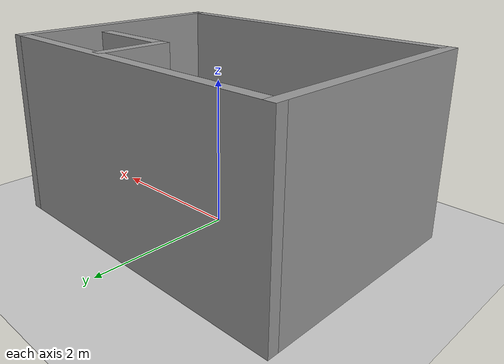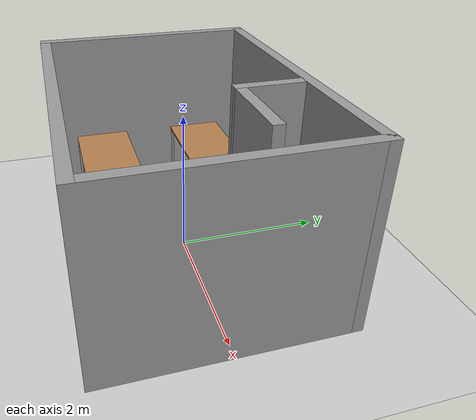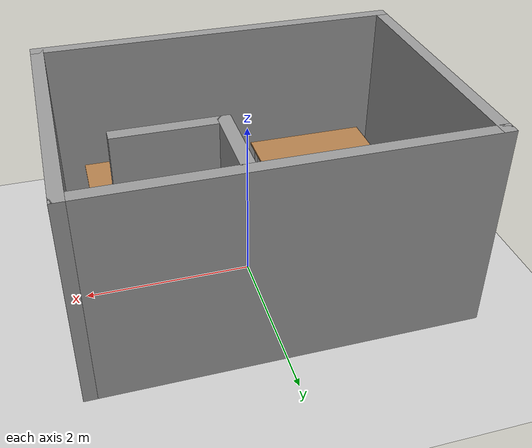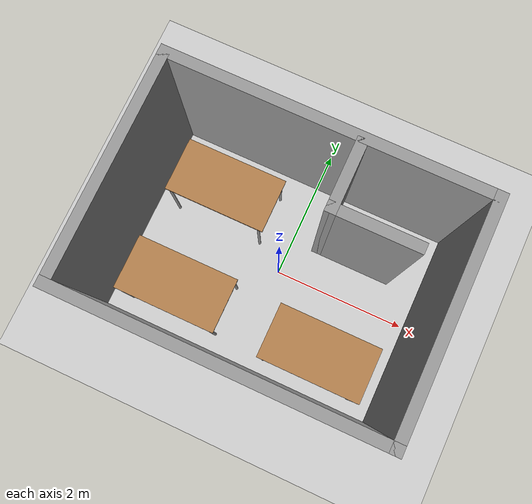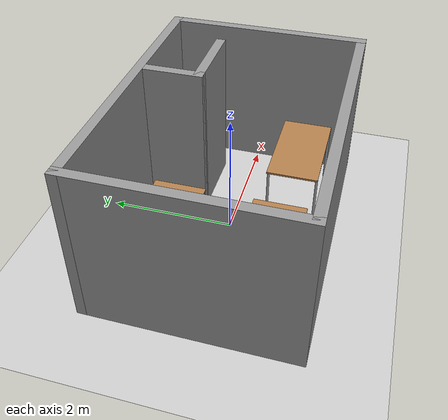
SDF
<sdf version="1.7">
 <world name="default">
  <light name="sun" type="directional">
   <pose>0 0 10 0 -0 0</pose>
   <diffuse>0.8 0.8 0.8 1</diffuse>
   <specular>0.2 0.2 0.2 1</specular>
   <attenuation>
    <range>1000</range>
    <constant>0.9</constant>
    <linear>0.01</linear>
    <quadratic>0.001</quadratic>
   </attenuation>
   <direction>-0.5 0.1 -0.9</direction>
   <spot><inner_angle>0</inner_angle><outer_angle>0</outer_angle><falloff>0</falloff></spot>
  </light>
  <model name="ground_plane">
   <static>1</static>
   <link name="link">
    <collision name="collision">
     <geometry><plane><normal>0 0 1</normal><size>100 100</size></plane></geometry>
     <surface>
      <contact><collide_bitmask>65535</collide_bitmask></contact>
      <friction><ode><mu>100</mu><mu2>50</mu2></ode></friction>
     </surface>
    </collision>
    <visual name="visual">
     <cast_shadows>0</cast_shadows>
     <geometry><plane><normal>0 0 1</normal><size>100 100</size></plane></geometry>
     <material>
      <script><uri>file://media/materials/scripts/gazebo.material</uri><name>Gazebo/Grey</name></script>
     </material>
    </visual>
   </link>
  </model>
  <gravity>0 0 -9.8</gravity>
  <magnetic_field>6e-06 2.3e-05 -4.2e-05</magnetic_field>
  <atmosphere type="adiabatic"/>
  <physics type="ode">
   <max_step_size>0.001</max_step_size>
   <real_time_factor>1</real_time_factor>
   <real_time_update_rate>1000</real_time_update_rate>
  </physics>
  <scene><ambient>0.4 0.4 0.4 1</ambient><background>0.7 0.7 0.7 1</background><shadows>1</shadows></scene>
  <audio><device>default</device></audio>
  <spherical_coordinates>
   <surface_model>EARTH_WGS84</surface_model>
   <latitude_deg>0</latitude_deg>
   <longitude_deg>0</longitude_deg>
   <elevation>0</elevation>
   <heading_deg>0</heading_deg>
  </spherical_coordinates>
  <model name="Untitled">
   <pose>-0.049668 -0.031023 0 0 -0 0</pose>
   <link name="Wall_18">
    <collision name="Wall_18_Collision">
     <geometry><box><size>3.25 0.15 2.5</size></box></geometry>
     <pose>0 0 1.25 0 -0 0</pose>
    </collision>
    <visual name="Wall_18_Visual">
     <pose>0 0 1.25 0 -0 0</pose>
     <geometry><box><size>3.25 0.15 2.5</size></box></geometry>
     <material>
      <script><uri>file://media/materials/scripts/gazebo.material</uri><name>Gazebo/Grey</name></script>
      <ambient>1 1 1 1</ambient>
     </material>
     <meta><layer>0</layer></meta>
    </visual>
    <pose>-2.175 -0 0 0 -0 -1.5708</pose>
   </link>
   <link name="Wall_19">
    <collision name="Wall_19_Collision">
     <geometry><box><size>4.5 0.15 2.5</size></box></geometry>
     <pose>0 0 1.25 0 -0 0</pose>
    </collision>
    <visual name="Wall_19_Visual">
     <pose>0 0 1.25 0 -0 0</pose>
     <geometry><box><size>4.5 0.15 2.5</size></box></geometry>
     <material>
      <script><uri>file://media/materials/scripts/gazebo.material</uri><name>Gazebo/Grey</name></script>
      <ambient>1 1 1 1</ambient>
     </material>
     <meta><layer>0</layer></meta>
    </visual>
    <pose>-0 -1.55 0 0 -0 0</pose>
   </link>
   <link name="Wall_20">
    <collision name="Wall_20_Collision">
     <geometry><box><size>3.25 0.15 2.5</size></box></geometry>
     <pose>0 0 1.25 0 -0 0</pose>
    </collision>
    <visual name="Wall_20_Visual">
     <pose>0 0 1.25 0 -0 0</pose>
     <geometry><box><size>3.25 0.15 2.5</size></box></geometry>
     <material>
      <script><uri>file://media/materials/scripts/gazebo.material</uri><name>Gazebo/Grey</name></script>
      <ambient>1 1 1 1</ambient>
     </material>
     <meta><layer>0</layer></meta>
    </visual>
    <pose>2.175 -0 0 0 -0 1.5708</pose>
   </link>
   <link name="Wall_21">
    <collision name="Wall_21_Collision">
     <geometry><box><size>4.5 0.15 2.5</size></box></geometry>
     <pose>0 0 1.25 0 -0 0</pose>
    </collision>
    <visual name="Wall_21_Visual">
     <pose>0 0 1.25 0 -0 0</pose>
     <geometry><box><size>4.5 0.15 2.5</size></box></geometry>
     <material>
      <script><uri>file://media/materials/scripts/gazebo.material</uri><name>Gazebo/Grey</name></script>
      <ambient>1 1 1 1</ambient>
     </material>
     <meta><layer>0</layer></meta>
    </visual>
    <pose>-0 1.55 0 0 -0 3.14159</pose>
   </link>
   <link name="Wall_23">
    <collision name="Wall_23_Collision">
     <geometry><box><size>1 0.15 2.5</size></box></geometry>
     <pose>0 0 1.25 0 -0 0</pose>
    </collision>
    <visual name="Wall_23_Visual">
     <pose>0 0 1.25 0 -0 0</pose>
     <geometry><box><size>1 0.15 2.5</size></box></geometry>
     <material>
      <script><uri>file://media/materials/scripts/gazebo.material</uri><name>Gazebo/Grey</name></script>
      <ambient>1 1 1 1</ambient>
     </material>
     <meta><layer>0</layer></meta>
    </visual>
    <pose>0.447 1.0445 0 0 -0 -1.5708</pose>
   </link>
   <link name="Wall_24">
    <collision name="Wall_24_Collision">
     <geometry><box><size>1.25 0.15 2.5</size></box></geometry>
     <pose>0 0 1.25 0 -0 0</pose>
    </collision>
    <visual name="Wall_24_Visual">
     <pose>0 0 1.25 0 -0 0</pose>
     <geometry><box><size>1.25 0.15 2.5</size></box></geometry>
     <material>
      <script><uri>file://media/materials/scripts/gazebo.material</uri><name>Gazebo/Grey</name></script>
      <ambient>1 1 1 1</ambient>
     </material>
     <meta><layer>0</layer></meta>
    </visual>
    <pose>0.997 0.6195 0 0 -0 0</pose>
   </link>
   <static>1</static>
  </model>
  <model name="table">
   <static>1</static>
   <link name="link">
    <collision name="surface">
     <pose>0 0 1 0 -0 0</pose>
     <geometry><box><size>1.5 0.8 0.03</size></box></geometry>
     <surface><friction><ode><mu>0.6</mu><mu2>0.6</mu2></ode></friction></surface>
    </collision>
    <visual name="visual1">
     <pose>0 0 1 0 -0 0</pose>
     <geometry><box><size>1.5 0.8 0.03</size></box></geometry>
     <material>
      <script><uri>file://media/materials/scripts/gazebo.material</uri><name>Gazebo/Wood</name></script>
     </material>
    </visual>
    <collision name="front_left_leg">
     <pose>0.68 0.38 0.5 0 -0 0</pose>
     <geometry><cylinder><radius>0.02</radius><length>1</length></cylinder></geometry>
    </collision>
    <visual name="front_left_leg">
     <pose>0.68 0.38 0.5 0 -0 0</pose>
     <geometry><cylinder><radius>0.02</radius><length>1</length></cylinder></geometry>
     <material>
      <script><uri>file://media/materials/scripts/gazebo.material</uri><name>Gazebo/Grey</name></script>
     </material>
    </visual>
    <collision name="front_right_leg">
     <pose>0.68 -0.38 0.5 0 -0 0</pose>
     <geometry><cylinder><radius>0.02</radius><length>1</length></cylinder></geometry>
    </collision>
    <visual name="front_right_leg">
     <pose>0.68 -0.38 0.5 0 -0 0</pose>
     <geometry><cylinder><radius>0.02</radius><length>1</length></cylinder></geometry>
     <material>
      <script><uri>file://media/materials/scripts/gazebo.material</uri><name>Gazebo/Grey</name></script>
     </material>
    </visual>
    <collision name="back_right_leg">
     <pose>-0.68 -0.38 0.5 0 -0 0</pose>
     <geometry><cylinder><radius>0.02</radius><length>1</length></cylinder></geometry>
    </collision>
    <visual name="back_right_leg">
     <pose>-0.68 -0.38 0.5 0 -0 0</pose>
     <geometry><cylinder><radius>0.02</radius><length>1</length></cylinder></geometry>
     <material>
      <script><uri>file://media/materials/scripts/gazebo.material</uri><name>Gazebo/Grey</name></script>
     </material>
    </visual>
    <collision name="back_left_leg">
     <pose>-0.68 0.38 0.5 0 -0 0</pose>
     <geometry><cylinder><radius>0.02</radius><length>1</length></cylinder></geometry>
    </collision>
    <visual name="back_left_leg">
     <pose>-0.68 0.38 0.5 0 -0 0</pose>
     <geometry><cylinder><radius>0.02</radius><length>1</length></cylinder></geometry>
     <material>
      <script><uri>file://media/materials/scripts/gazebo.material</uri><name>Gazebo/Grey</name></script>
     </material>
    </visual>
   </link>
   <pose>-1.12752 0.673091 0 0 -0 0</pose>
  </model>
  <model name="table_0">
   <static>1</static>
   <link name="link">
    <collision name="surface">
     <pose>0 0 1 0 -0 0</pose>
     <geometry><box><size>1.5 0.8 0.03</size></box></geometry>
     <surface><friction><ode><mu>0.6</mu><mu2>0.6</mu2></ode></friction></surface>
    </collision>
    <visual name="visual1">
     <pose>0 0 1 0 -0 0</pose>
     <geometry><box><size>1.5 0.8 0.03</size></box></geometry>
     <material>
      <script><uri>file://media/materials/scripts/gazebo.material</uri><name>Gazebo/Wood</name></script>
     </material>
    </visual>
    <collision name="front_left_leg">
     <pose>0.68 0.38 0.5 0 -0 0</pose>
     <geometry><cylinder><radius>0.02</radius><length>1</length></cylinder></geometry>
    </collision>
    <visual name="front_left_leg">
     <pose>0.68 0.38 0.5 0 -0 0</pose>
     <geometry><cylinder><radius>0.02</radius><length>1</length></cylinder></geometry>
     <material>
      <script><uri>file://media/materials/scripts/gazebo.material</uri><name>Gazebo/Grey</name></script>
     </material>
    </visual>
    <collision name="front_right_leg">
     <pose>0.68 -0.38 0.5 0 -0 0</pose>
     <geometry><cylinder><radius>0.02</radius><length>1</length></cylinder></geometry>
    </collision>
    <visual name="front_right_leg">
     <pose>0.68 -0.38 0.5 0 -0 0</pose>
     <geometry><cylinder><radius>0.02</radius><length>1</length></cylinder></geometry>
     <material>
      <script><uri>file://media/materials/scripts/gazebo.material</uri><name>Gazebo/Grey</name></script>
     </material>
    </visual>
    <collision name="back_right_leg">
     <pose>-0.68 -0.38 0.5 0 -0 0</pose>
     <geometry><cylinder><radius>0.02</radius><length>1</length></cylinder></geometry>
    </collision>
    <visual name="back_right_leg">
     <pose>-0.68 -0.38 0.5 0 -0 0</pose>
     <geometry><cylinder><radius>0.02</radius><length>1</length></cylinder></geometry>
     <material>
      <script><uri>file://media/materials/scripts/gazebo.material</uri><name>Gazebo/Grey</name></script>
     </material>
    </visual>
    <collision name="back_left_leg">
     <pose>-0.68 0.38 0.5 0 -0 0</pose>
     <geometry><cylinder><radius>0.02</radius><length>1</length></cylinder></geometry>
    </collision>
    <visual name="back_left_leg">
     <pose>-0.68 0.38 0.5 0 -0 0</pose>
     <geometry><cylinder><radius>0.02</radius><length>1</length></cylinder></geometry>
     <material>
      <script><uri>file://media/materials/scripts/gazebo.material</uri><name>Gazebo/Grey</name></script>
     </material>
    </visual>
   </link>
   <pose>-1.14748 -0.869848 0 0 -0 0</pose>
  </model>
  <model name="table_1">
   <static>1</static>
   <link name="link">
    <collision name="surface">
     <pose>0 0 1 0 -0 0</pose>
     <geometry><box><size>1.5 0.8 0.03</size></box></geometry>
     <surface><friction><ode><mu>0.6</mu><mu2>0.6</mu2></ode></friction></surface>
    </collision>
    <visual name="visual1">
     <pose>0 0 1 0 -0 0</pose>
     <geometry><box><size>1.5 0.8 0.03</size></box></geometry>
     <material>
      <script><uri>file://media/materials/scripts/gazebo.material</uri><name>Gazebo/Wood</name></script>
     </material>
    </visual>
    <collision name="front_left_leg">
     <pose>0.68 0.38 0.5 0 -0 0</pose>
     <geometry><cylinder><radius>0.02</radius><length>1</length></cylinder></geometry>
    </collision>
    <visual name="front_left_leg">
     <pose>0.68 0.38 0.5 0 -0 0</pose>
     <geometry><cylinder><radius>0.02</radius><length>1</length></cylinder></geometry>
     <material>
      <script><uri>file://media/materials/scripts/gazebo.material</uri><name>Gazebo/Grey</name></script>
     </material>
    </visual>
    <collision name="front_right_leg">
     <pose>0.68 -0.38 0.5 0 -0 0</pose>
     <geometry><cylinder><radius>0.02</radius><length>1</length></cylinder></geometry>
    </collision>
    <visual name="front_right_leg">
     <pose>0.68 -0.38 0.5 0 -0 0</pose>
     <geometry><cylinder><radius>0.02</radius><length>1</length></cylinder></geometry>
     <material>
      <script><uri>file://media/materials/scripts/gazebo.material</uri><name>Gazebo/Grey</name></script>
     </material>
    </visual>
    <collision name="back_right_leg">
     <pose>-0.68 -0.38 0.5 0 -0 0</pose>
     <geometry><cylinder><radius>0.02</radius><length>1</length></cylinder></geometry>
    </collision>
    <visual name="back_right_leg">
     <pose>-0.68 -0.38 0.5 0 -0 0</pose>
     <geometry><cylinder><radius>0.02</radius><length>1</length></cylinder></geometry>
     <material>
      <script><uri>file://media/materials/scripts/gazebo.material</uri><name>Gazebo/Grey</name></script>
     </material>
    </visual>
    <collision name="back_left_leg">
     <pose>-0.68 0.38 0.5 0 -0 0</pose>
     <geometry><cylinder><radius>0.02</radius><length>1</length></cylinder></geometry>
    </collision>
    <visual name="back_left_leg">
     <pose>-0.68 0.38 0.5 0 -0 0</pose>
     <geometry><cylinder><radius>0.02</radius><length>1</length></cylinder></geometry>
     <material>
      <script><uri>file://media/materials/scripts/gazebo.material</uri><name>Gazebo/Grey</name></script>
     </material>
    </visual>
   </link>
   <pose>1.01709 -0.909596 0 0 -0 0</pose>
  </model>
 </world>
</sdf>
